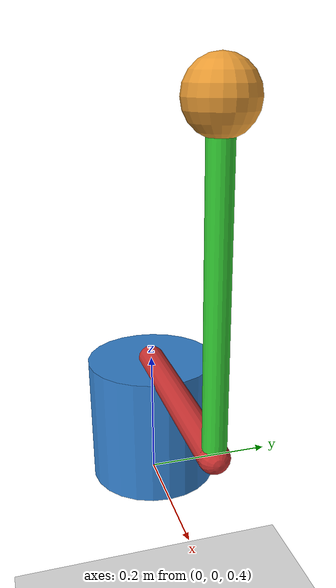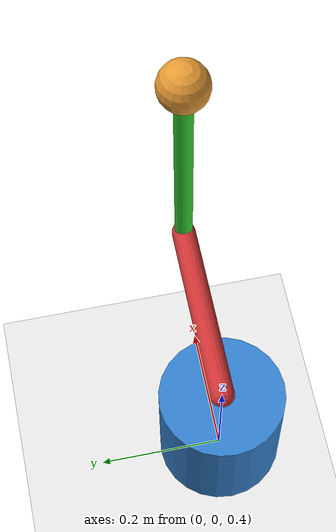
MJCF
<!-- MuJoCo 模型：旋转倒立摆 -->
<mujoco model="rotary_inverted_pendulum">
    <!--
        编译器设置：
        - angle="degree"：使用角度作为单位（而不是弧度）
        - coordinate="local"：关节坐标使用局部坐标系
        - inertiafromgeom="true"：从几何体自动计算惯性
    -->
    <compiler angle="degree" coordinate="local" inertiafromgeom="true"/>

    <!-- 模拟选项：时间步长和重力向量 -->
    <option timestep="0.01" gravity="0 0 -9.81"/>

    <asset>
        <!-- 天空盒纹理，用于场景背景渲染 -->
        <texture type="skybox" builtin="gradient" rgb1=".4 .5 .6" rgb2="0 0 0" width="100" height="100"/>
    </asset>

    <worldbody>
        <!-- 光源：位置和方向 -->
        <light pos="0 0 3" dir="0 0 -1" directional="true"/>
        <!-- 地面平面几何体，用作视觉参考和碰撞 -->
        <geom type="plane" size="2 2 0.1" rgba=".9 .9 .9 1"/>

        <!-- 基座：整个装置的固定支撑 -->
        <body name="base" pos="0 0 0.5">
            <!-- 基座几何体（圆柱），仅用于显示/碰撞 -->
            <geom type="cylinder" size="0.1 0.1" rgba=".2 .5 .8 1"/>

            <!-- 臂（旋转部分），相对于基座有一个小偏移 -->
            <body name="arm" pos="0 0 0.1">
                <!-- 臂的铰链关节：绕 z 轴旋转，用于控制旋转角度 -->
                <joint name="arm_joint" type="hinge" axis="0 0 1" damping="0.05"/>
                <!-- 显式设置臂的惯性以增加臂质量，帮助抑制臂随摆振动 -->
                <inertial mass="0.6" pos="0 0 0"/>
                <!-- 臂的几何体（胶囊形），从原点到 0.3m 处 -->
                <geom type="capsule" fromto="0 0 0  0.3 0 0" size="0.02" rgba=".8 .2 .2 1"/>

                <!-- 倒立杆挂在臂末端 -->
                <body name="pole" pos="0.3 0 0">
                    <!--
                        杆的铰链关节：设置为绕 x 轴（沿臂方向）旋转，
                        使杆的旋转面始终垂直于臂的方向（随臂一起旋转）。
                    -->
                    <joint name="pole_joint" type="hinge" axis="1 0 0" damping="0.04"/>
                    <!-- 将杆自身质量设小，绝大部分质量放在末端的小球上 -->
                    <inertial mass="0.05" pos="0 0 0"/>
                    <!-- 杆的几何体（胶囊），长度约 0.4m -->
                    <geom type="capsule" fromto="0 0 0  0 0 0.4" size="0.015" rgba=".2 .8 .2 1"/>

                    <!-- 端部重球：固连在杆末端（pos=0 0 0.4），大部分质量集中于此 -->
                    <body name="ball" pos="0 0 0.4">
                        <inertial mass="0.45" pos="0 0 0"/>
                        <geom type="sphere" size="0.04" rgba=".9 .6 .2 1"/>
                    </body>
                </body>
            </body>
        </body>
    </worldbody>

    <actuator>
        <!-- 臂驱动电机：连接到 `arm_joint`，并限制控制输入范围 -->
        <motor joint="arm_joint" name="arm_motor" gear="1" ctrllimited="true" ctrlrange="-50 50"/>
    </actuator>

    <sensor>
        <!-- 传感器：测量关节位置与速度，便于控制器读取 -->
        <jointpos joint="arm_joint" name="arm_pos"/>
        <jointpos joint="pole_joint" name="pole_pos"/>
        <jointvel joint="arm_joint" name="arm_vel"/>
        <jointvel joint="pole_joint" name="pole_vel"/>
    </sensor>
</mujoco>
